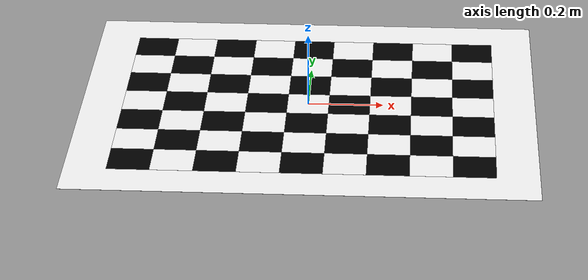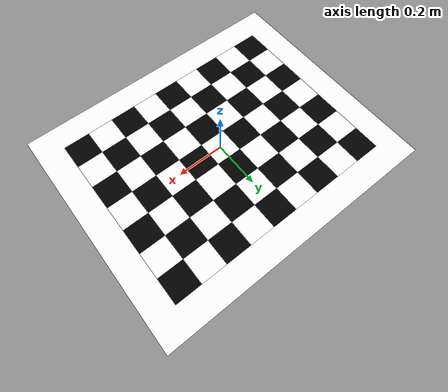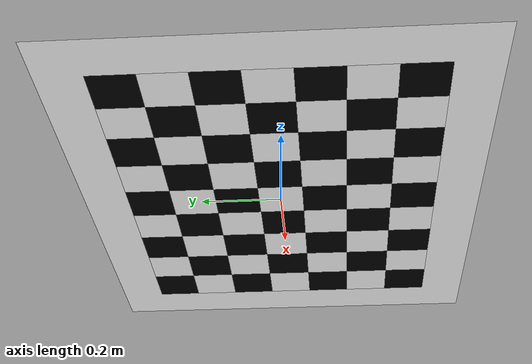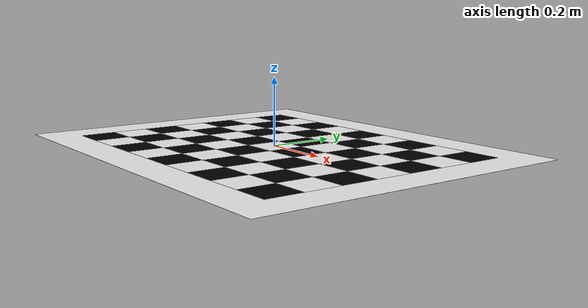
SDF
<?xml version="1.0"?>
<sdf version="1.4">
  <model name="checkerboard_9_7_0_11">
  <static>true</static>
  <link name="checkerboard_9_7_0_11_body">
      <visual name="checker_0_0">
        <pose>-0.44 -0.33 0 0 0 0</pose>
        <geometry>
          <box>
            <size>0.11 0.11 0.0002</size>
          </box>
        </geometry>
        <material>
          <ambient>0 0 0 1</ambient>
          <diffuse>0 0 0 1</diffuse>
          <specular>0 0 0 1</specular>
          <emissive>0 0 0 1</emissive>
        </material>
      </visual>
      <visual name="checker_0_1">
        <pose>-0.44 -0.22 0 0 0 0</pose>
        <geometry>
          <box>
            <size>0.11 0.11 0.0002</size>
          </box>
        </geometry>
        <material>
          <ambient>1 1 1 1</ambient>
          <diffuse>1 1 1 1</diffuse>
          <specular>1 1 1 1</specular>
          <emissive>1 1 1 1</emissive>
        </material>
      </visual>
      <visual name="checker_0_2">
        <pose>-0.44 -0.10999999999999999 0 0 0 0</pose>
        <geometry>
          <box>
            <size>0.11 0.11 0.0002</size>
          </box>
        </geometry>
        <material>
          <ambient>0 0 0 1</ambient>
          <diffuse>0 0 0 1</diffuse>
          <specular>0 0 0 1</specular>
          <emissive>0 0 0 1</emissive>
        </material>
      </visual>
      <visual name="checker_0_3">
        <pose>-0.44 0.0 0 0 0 0</pose>
        <geometry>
          <box>
            <size>0.11 0.11 0.0002</size>
          </box>
        </geometry>
        <material>
          <ambient>1 1 1 1</ambient>
          <diffuse>1 1 1 1</diffuse>
          <specular>1 1 1 1</specular>
          <emissive>1 1 1 1</emissive>
        </material>
      </visual>
      <visual name="checker_0_4">
        <pose>-0.44 0.10999999999999999 0 0 0 0</pose>
        <geometry>
          <box>
            <size>0.11 0.11 0.0002</size>
          </box>
        </geometry>
        <material>
          <ambient>0 0 0 1</ambient>
          <diffuse>0 0 0 1</diffuse>
          <specular>0 0 0 1</specular>
          <emissive>0 0 0 1</emissive>
        </material>
      </visual>
      <visual name="checker_0_5">
        <pose>-0.44 0.22000000000000008 0 0 0 0</pose>
        <geometry>
          <box>
            <size>0.11 0.11 0.0002</size>
          </box>
        </geometry>
        <material>
          <ambient>1 1 1 1</ambient>
          <diffuse>1 1 1 1</diffuse>
          <specular>1 1 1 1</specular>
          <emissive>1 1 1 1</emissive>
        </material>
      </visual>
      <visual name="checker_0_6">
        <pose>-0.44 0.33000000000000007 0 0 0 0</pose>
        <geometry>
          <box>
            <size>0.11 0.11 0.0002</size>
          </box>
        </geometry>
        <material>
          <ambient>0 0 0 1</ambient>
          <diffuse>0 0 0 1</diffuse>
          <specular>0 0 0 1</specular>
          <emissive>0 0 0 1</emissive>
        </material>
      </visual>
      <visual name="checker_1_0">
        <pose>-0.32999999999999996 -0.33 0 0 0 0</pose>
        <geometry>
          <box>
            <size>0.11 0.11 0.0002</size>
          </box>
        </geometry>
        <material>
          <ambient>1 1 1 1</ambient>
          <diffuse>1 1 1 1</diffuse>
          <specular>1 1 1 1</specular>
          <emissive>1 1 1 1</emissive>
        </material>
      </visual>
      <visual name="checker_1_1">
        <pose>-0.32999999999999996 -0.22 0 0 0 0</pose>
        <geometry>
          <box>
            <size>0.11 0.11 0.0002</size>
          </box>
        </geometry>
        <material>
          <ambient>0 0 0 1</ambient>
          <diffuse>0 0 0 1</diffuse>
          <specular>0 0 0 1</specular>
          <emissive>0 0 0 1</emissive>
        </material>
      </visual>
      <visual name="checker_1_2">
        <pose>-0.32999999999999996 -0.10999999999999999 0 0 0 0</pose>
        <geometry>
          <box>
            <size>0.11 0.11 0.0002</size>
          </box>
        </geometry>
        <material>
          <ambient>1 1 1 1</ambient>
          <diffuse>1 1 1 1</diffuse>
          <specular>1 1 1 1</specular>
          <emissive>1 1 1 1</emissive>
        </material>
      </visual>
      <visual name="checker_1_3">
        <pose>-0.32999999999999996 0.0 0 0 0 0</pose>
        <geometry>
          <box>
            <size>0.11 0.11 0.0002</size>
          </box>
        </geometry>
        <material>
          <ambient>0 0 0 1</ambient>
          <diffuse>0 0 0 1</diffuse>
          <specular>0 0 0 1</specular>
          <emissive>0 0 0 1</emissive>
        </material>
      </visual>
      <visual name="checker_1_4">
        <pose>-0.32999999999999996 0.10999999999999999 0 0 0 0</pose>
        <geometry>
          <box>
            <size>0.11 0.11 0.0002</size>
          </box>
        </geometry>
        <material>
          <ambient>1 1 1 1</ambient>
          <diffuse>1 1 1 1</diffuse>
          <specular>1 1 1 1</specular>
          <emissive>1 1 1 1</emissive>
        </material>
      </visual>
      <visual name="checker_1_5">
        <pose>-0.32999999999999996 0.22000000000000008 0 0 0 0</pose>
        <geometry>
          <box>
            <size>0.11 0.11 0.0002</size>
          </box>
        </geometry>
        <material>
          <ambient>0 0 0 1</ambient>
          <diffuse>0 0 0 1</diffuse>
          <specular>0 0 0 1</specular>
          <emissive>0 0 0 1</emissive>
        </material>
      </visual>
      <visual name="checker_1_6">
        <pose>-0.32999999999999996 0.33000000000000007 0 0 0 0</pose>
        <geometry>
          <box>
            <size>0.11 0.11 0.0002</size>
          </box>
        </geometry>
        <material>
          <ambient>1 1 1 1</ambient>
          <diffuse>1 1 1 1</diffuse>
          <specular>1 1 1 1</specular>
          <emissive>1 1 1 1</emissive>
        </material>
      </visual>
      <visual name="checker_2_0">
        <pose>-0.21999999999999997 -0.33 0 0 0 0</pose>
        <geometry>
          <box>
            <size>0.11 0.11 0.0002</size>
          </box>
        </geometry>
        <material>
          <ambient>0 0 0 1</ambient>
          <diffuse>0 0 0 1</diffuse>
          <specular>0 0 0 1</specular>
          <emissive>0 0 0 1</emissive>
        </material>
      </visual>
      <visual name="checker_2_1">
        <pose>-0.21999999999999997 -0.22 0 0 0 0</pose>
        <geometry>
          <box>
            <size>0.11 0.11 0.0002</size>
          </box>
        </geometry>
        <material>
          <ambient>1 1 1 1</ambient>
          <diffuse>1 1 1 1</diffuse>
          <specular>1 1 1 1</specular>
          <emissive>1 1 1 1</emissive>
        </material>
      </visual>
      <visual name="checker_2_2">
        <pose>-0.21999999999999997 -0.10999999999999999 0 0 0 0</pose>
        <geometry>
          <box>
            <size>0.11 0.11 0.0002</size>
          </box>
        </geometry>
        <material>
          <ambient>0 0 0 1</ambient>
          <diffuse>0 0 0 1</diffuse>
          <specular>0 0 0 1</specular>
          <emissive>0 0 0 1</emissive>
        </material>
      </visual>
      <visual name="checker_2_3">
        <pose>-0.21999999999999997 0.0 0 0 0 0</pose>
        <geometry>
          <box>
            <size>0.11 0.11 0.0002</size>
          </box>
        </geometry>
        <material>
          <ambient>1 1 1 1</ambient>
          <diffuse>1 1 1 1</diffuse>
          <specular>1 1 1 1</specular>
          <emissive>1 1 1 1</emissive>
        </material>
      </visual>
      <visual name="checker_2_4">
        <pose>-0.21999999999999997 0.10999999999999999 0 0 0 0</pose>
        <geometry>
          <box>
            <size>0.11 0.11 0.0002</size>
          </box>
        </geometry>
        <material>
          <ambient>0 0 0 1</ambient>
          <diffuse>0 0 0 1</diffuse>
          <specular>0 0 0 1</specular>
          <emissive>0 0 0 1</emissive>
        </material>
      </visual>
      <visual name="checker_2_5">
        <pose>-0.21999999999999997 0.22000000000000008 0 0 0 0</pose>
        <geometry>
          <box>
            <size>0.11 0.11 0.0002</size>
          </box>
        </geometry>
        <material>
          <ambient>1 1 1 1</ambient>
          <diffuse>1 1 1 1</diffuse>
          <specular>1 1 1 1</specular>
          <emissive>1 1 1 1</emissive>
        </material>
      </visual>
      <visual name="checker_2_6">
        <pose>-0.21999999999999997 0.33000000000000007 0 0 0 0</pose>
        <geometry>
          <box>
            <size>0.11 0.11 0.0002</size>
          </box>
        </geometry>
        <material>
          <ambient>0 0 0 1</ambient>
          <diffuse>0 0 0 1</diffuse>
          <specular>0 0 0 1</specular>
          <emissive>0 0 0 1</emissive>
        </material>
      </visual>
      <visual name="checker_3_0">
        <pose>-0.10999999999999999 -0.33 0 0 0 0</pose>
        <geometry>
          <box>
            <size>0.11 0.11 0.0002</size>
          </box>
        </geometry>
        <material>
          <ambient>1 1 1 1</ambient>
          <diffuse>1 1 1 1</diffuse>
          <specular>1 1 1 1</specular>
          <emissive>1 1 1 1</emissive>
        </material>
      </visual>
      <visual name="checker_3_1">
        <pose>-0.10999999999999999 -0.22 0 0 0 0</pose>
        <geometry>
          <box>
            <size>0.11 0.11 0.0002</size>
          </box>
        </geometry>
        <material>
          <ambient>0 0 0 1</ambient>
          <diffuse>0 0 0 1</diffuse>
          <specular>0 0 0 1</specular>
          <emissive>0 0 0 1</emissive>
        </material>
      </visual>
      <visual name="checker_3_2">
        <pose>-0.10999999999999999 -0.10999999999999999 0 0 0 0</pose>
        <geometry>
          <box>
            <size>0.11 0.11 0.0002</size>
          </box>
        </geometry>
        <material>
          <ambient>1 1 1 1</ambient>
          <diffuse>1 1 1 1</diffuse>
          <specular>1 1 1 1</specular>
          <emissive>1 1 1 1</emissive>
        </material>
      </visual>
      <visual name="checker_3_3">
        <pose>-0.10999999999999999 0.0 0 0 0 0</pose>
        <geometry>
          <box>
            <size>0.11 0.11 0.0002</size>
          </box>
        </geometry>
        <material>
          <ambient>0 0 0 1</ambient>
          <diffuse>0 0 0 1</diffuse>
          <specular>0 0 0 1</specular>
          <emissive>0 0 0 1</emissive>
        </material>
      </visual>
      <visual name="checker_3_4">
        <pose>-0.10999999999999999 0.10999999999999999 0 0 0 0</pose>
        <geometry>
          <box>
            <size>0.11 0.11 0.0002</size>
          </box>
        </geometry>
        <material>
          <ambient>1 1 1 1</ambient>
          <diffuse>1 1 1 1</diffuse>
          <specular>1 1 1 1</specular>
          <emissive>1 1 1 1</emissive>
        </material>
      </visual>
      <visual name="checker_3_5">
        <pose>-0.10999999999999999 0.22000000000000008 0 0 0 0</pose>
        <geometry>
          <box>
            <size>0.11 0.11 0.0002</size>
          </box>
        </geometry>
        <material>
          <ambient>0 0 0 1</ambient>
          <diffuse>0 0 0 1</diffuse>
          <specular>0 0 0 1</specular>
          <emissive>0 0 0 1</emissive>
        </material>
      </visual>
      <visual name="checker_3_6">
        <pose>-0.10999999999999999 0.33000000000000007 0 0 0 0</pose>
        <geometry>
          <box>
            <size>0.11 0.11 0.0002</size>
          </box>
        </geometry>
        <material>
          <ambient>1 1 1 1</ambient>
          <diffuse>1 1 1 1</diffuse>
          <specular>1 1 1 1</specular>
          <emissive>1 1 1 1</emissive>
        </material>
      </visual>
      <visual name="checker_4_0">
        <pose>0.0 -0.33 0 0 0 0</pose>
        <geometry>
          <box>
            <size>0.11 0.11 0.0002</size>
          </box>
        </geometry>
        <material>
          <ambient>0 0 0 1</ambient>
          <diffuse>0 0 0 1</diffuse>
          <specular>0 0 0 1</specular>
          <emissive>0 0 0 1</emissive>
        </material>
      </visual>
      <visual name="checker_4_1">
        <pose>0.0 -0.22 0 0 0 0</pose>
        <geometry>
          <box>
            <size>0.11 0.11 0.0002</size>
          </box>
        </geometry>
        <material>
          <ambient>1 1 1 1</ambient>
          <diffuse>1 1 1 1</diffuse>
          <specular>1 1 1 1</specular>
          <emissive>1 1 1 1</emissive>
        </material>
      </visual>
      <visual name="checker_4_2">
        <pose>0.0 -0.10999999999999999 0 0 0 0</pose>
        <geometry>
          <box>
            <size>0.11 0.11 0.0002</size>
          </box>
        </geometry>
        <material>
          <ambient>0 0 0 1</ambient>
          <diffuse>0 0 0 1</diffuse>
          <specular>0 0 0 1</specular>
          <emissive>0 0 0 1</emissive>
        </material>
      </visual>
      <visual name="checker_4_3">
        <pose>0.0 0.0 0 0 0 0</pose>
        <geometry>
          <box>
            <size>0.11 0.11 0.0002</size>
          </box>
        </geometry>
        <material>
          <ambient>1 1 1 1</ambient>
          <diffuse>1 1 1 1</diffuse>
          <specular>1 1 1 1</specular>
          <emissive>1 1 1 1</emissive>
        </material>
      </visual>
      <visual name="checker_4_4">
        <pose>0.0 0.10999999999999999 0 0 0 0</pose>
        <geometry>
          <box>
            <size>0.11 0.11 0.0002</size>
          </box>
        </geometry>
        <material>
          <ambient>0 0 0 1</ambient>
          <diffuse>0 0 0 1</diffuse>
          <specular>0 0 0 1</specular>
          <emissive>0 0 0 1</emissive>
        </material>
      </visual>
      <visual name="checker_4_5">
        <pose>0.0 0.22000000000000008 0 0 0 0</pose>
        <geometry>
          <box>
            <size>0.11 0.11 0.0002</size>
          </box>
        </geometry>
        <material>
          <ambient>1 1 1 1</ambient>
          <diffuse>1 1 1 1</diffuse>
          <specular>1 1 1 1</specular>
          <emissive>1 1 1 1</emissive>
        </material>
      </visual>
      <visual name="checker_4_6">
        <pose>0.0 0.33000000000000007 0 0 0 0</pose>
        <geometry>
          <box>
            <size>0.11 0.11 0.0002</size>
          </box>
        </geometry>
        <material>
          <ambient>0 0 0 1</ambient>
          <diffuse>0 0 0 1</diffuse>
          <specular>0 0 0 1</specular>
          <emissive>0 0 0 1</emissive>
        </material>
      </visual>
      <visual name="checker_5_0">
        <pose>0.1100000000000001 -0.33 0 0 0 0</pose>
        <geometry>
          <box>
            <size>0.11 0.11 0.0002</size>
          </box>
        </geometry>
        <material>
          <ambient>1 1 1 1</ambient>
          <diffuse>1 1 1 1</diffuse>
          <specular>1 1 1 1</specular>
          <emissive>1 1 1 1</emissive>
        </material>
      </visual>
      <visual name="checker_5_1">
        <pose>0.1100000000000001 -0.22 0 0 0 0</pose>
        <geometry>
          <box>
            <size>0.11 0.11 0.0002</size>
          </box>
        </geometry>
        <material>
          <ambient>0 0 0 1</ambient>
          <diffuse>0 0 0 1</diffuse>
          <specular>0 0 0 1</specular>
          <emissive>0 0 0 1</emissive>
        </material>
      </visual>
      <visual name="checker_5_2">
        <pose>0.1100000000000001 -0.10999999999999999 0 0 0 0</pose>
        <geometry>
          <box>
            <size>0.11 0.11 0.0002</size>
          </box>
        </geometry>
        <material>
          <ambient>1 1 1 1</ambient>
          <diffuse>1 1 1 1</diffuse>
          <specular>1 1 1 1</specular>
          <emissive>1 1 1 1</emissive>
        </material>
      </visual>
      <visual name="checker_5_3">
        <pose>0.1100000000000001 0.0 0 0 0 0</pose>
        <geometry>
          <box>
            <size>0.11 0.11 0.0002</size>
          </box>
        </geometry>
        <material>
          <ambient>0 0 0 1</ambient>
          <diffuse>0 0 0 1</diffuse>
          <specular>0 0 0 1</specular>
          <emissive>0 0 0 1</emissive>
        </material>
      </visual>
      <visual name="checker_5_4">
        <pose>0.1100000000000001 0.10999999999999999 0 0 0 0</pose>
        <geometry>
          <box>
            <size>0.11 0.11 0.0002</size>
          </box>
        </geometry>
        <material>
          <ambient>1 1 1 1</ambient>
          <diffuse>1 1 1 1</diffuse>
          <specular>1 1 1 1</specular>
          <emissive>1 1 1 1</emissive>
        </material>
      </visual>
      <visual name="checker_5_5">
        <pose>0.1100000000000001 0.22000000000000008 0 0 0 0</pose>
        <geometry>
          <box>
            <size>0.11 0.11 0.0002</size>
          </box>
        </geometry>
        <material>
          <ambient>0 0 0 1</ambient>
          <diffuse>0 0 0 1</diffuse>
          <specular>0 0 0 1</specular>
          <emissive>0 0 0 1</emissive>
        </material>
      </visual>
      <visual name="checker_5_6">
        <pose>0.1100000000000001 0.33000000000000007 0 0 0 0</pose>
        <geometry>
          <box>
            <size>0.11 0.11 0.0002</size>
          </box>
        </geometry>
        <material>
          <ambient>1 1 1 1</ambient>
          <diffuse>1 1 1 1</diffuse>
          <specular>1 1 1 1</specular>
          <emissive>1 1 1 1</emissive>
        </material>
      </visual>
      <visual name="checker_6_0">
        <pose>0.22000000000000008 -0.33 0 0 0 0</pose>
        <geometry>
          <box>
            <size>0.11 0.11 0.0002</size>
          </box>
        </geometry>
        <material>
          <ambient>0 0 0 1</ambient>
          <diffuse>0 0 0 1</diffuse>
          <specular>0 0 0 1</specular>
          <emissive>0 0 0 1</emissive>
        </material>
      </visual>
      <visual name="checker_6_1">
        <pose>0.22000000000000008 -0.22 0 0 0 0</pose>
        <geometry>
          <box>
            <size>0.11 0.11 0.0002</size>
          </box>
        </geometry>
        <material>
          <ambient>1 1 1 1</ambient>
          <diffuse>1 1 1 1</diffuse>
          <specular>1 1 1 1</specular>
          <emissive>1 1 1 1</emissive>
        </material>
      </visual>
      <visual name="checker_6_2">
        <pose>0.22000000000000008 -0.10999999999999999 0 0 0 0</pose>
        <geometry>
          <box>
            <size>0.11 0.11 0.0002</size>
          </box>
        </geometry>
        <material>
          <ambient>0 0 0 1</ambient>
          <diffuse>0 0 0 1</diffuse>
          <specular>0 0 0 1</specular>
          <emissive>0 0 0 1</emissive>
        </material>
      </visual>
      <visual name="checker_6_3">
        <pose>0.22000000000000008 0.0 0 0 0 0</pose>
        <geometry>
          <box>
            <size>0.11 0.11 0.0002</size>
          </box>
        </geometry>
        <material>
          <ambient>1 1 1 1</ambient>
          <diffuse>1 1 1 1</diffuse>
          <specular>1 1 1 1</specular>
          <emissive>1 1 1 1</emissive>
        </material>
      </visual>
      <visual name="checker_6_4">
        <pose>0.22000000000000008 0.10999999999999999 0 0 0 0</pose>
        <geometry>
          <box>
            <size>0.11 0.11 0.0002</size>
          </box>
        </geometry>
        <material>
          <ambient>0 0 0 1</ambient>
          <diffuse>0 0 0 1</diffuse>
          <specular>0 0 0 1</specular>
          <emissive>0 0 0 1</emissive>
        </material>
      </visual>
      <visual name="checker_6_5">
        <pose>0.22000000000000008 0.22000000000000008 0 0 0 0</pose>
        <geometry>
          <box>
            <size>0.11 0.11 0.0002</size>
          </box>
        </geometry>
        <material>
          <ambient>1 1 1 1</ambient>
          <diffuse>1 1 1 1</diffuse>
          <specular>1 1 1 1</specular>
          <emissive>1 1 1 1</emissive>
        </material>
      </visual>
      <visual name="checker_6_6">
        <pose>0.22000000000000008 0.33000000000000007 0 0 0 0</pose>
        <geometry>
          <box>
            <size>0.11 0.11 0.0002</size>
          </box>
        </geometry>
        <material>
          <ambient>0 0 0 1</ambient>
          <diffuse>0 0 0 1</diffuse>
          <specular>0 0 0 1</specular>
          <emissive>0 0 0 1</emissive>
        </material>
      </visual>
      <visual name="checker_7_0">
        <pose>0.33000000000000007 -0.33 0 0 0 0</pose>
        <geometry>
          <box>
            <size>0.11 0.11 0.0002</size>
          </box>
        </geometry>
        <material>
          <ambient>1 1 1 1</ambient>
          <diffuse>1 1 1 1</diffuse>
          <specular>1 1 1 1</specular>
          <emissive>1 1 1 1</emissive>
        </material>
      </visual>
      <visual name="checker_7_1">
        <pose>0.33000000000000007 -0.22 0 0 0 0</pose>
        <geometry>
          <box>
            <size>0.11 0.11 0.0002</size>
          </box>
        </geometry>
        <material>
          <ambient>0 0 0 1</ambient>
          <diffuse>0 0 0 1</diffuse>
          <specular>0 0 0 1</specular>
          <emissive>0 0 0 1</emissive>
        </material>
      </visual>
      <visual name="checker_7_2">
        <pose>0.33000000000000007 -0.10999999999999999 0 0 0 0</pose>
        <geometry>
          <box>
            <size>0.11 0.11 0.0002</size>
          </box>
        </geometry>
        <material>
          <ambient>1 1 1 1</ambient>
          <diffuse>1 1 1 1</diffuse>
          <specular>1 1 1 1</specular>
          <emissive>1 1 1 1</emissive>
        </material>
      </visual>
      <visual name="checker_7_3">
        <pose>0.33000000000000007 0.0 0 0 0 0</pose>
        <geometry>
          <box>
            <size>0.11 0.11 0.0002</size>
          </box>
        </geometry>
        <material>
          <ambient>0 0 0 1</ambient>
          <diffuse>0 0 0 1</diffuse>
          <specular>0 0 0 1</specular>
          <emissive>0 0 0 1</emissive>
        </material>
      </visual>
      <visual name="checker_7_4">
        <pose>0.33000000000000007 0.10999999999999999 0 0 0 0</pose>
        <geometry>
          <box>
            <size>0.11 0.11 0.0002</size>
          </box>
        </geometry>
        <material>
          <ambient>1 1 1 1</ambient>
          <diffuse>1 1 1 1</diffuse>
          <specular>1 1 1 1</specular>
          <emissive>1 1 1 1</emissive>
        </material>
      </visual>
      <visual name="checker_7_5">
        <pose>0.33000000000000007 0.22000000000000008 0 0 0 0</pose>
        <geometry>
          <box>
            <size>0.11 0.11 0.0002</size>
          </box>
        </geometry>
        <material>
          <ambient>0 0 0 1</ambient>
          <diffuse>0 0 0 1</diffuse>
          <specular>0 0 0 1</specular>
          <emissive>0 0 0 1</emissive>
        </material>
      </visual>
      <visual name="checker_7_6">
        <pose>0.33000000000000007 0.33000000000000007 0 0 0 0</pose>
        <geometry>
          <box>
            <size>0.11 0.11 0.0002</size>
          </box>
        </geometry>
        <material>
          <ambient>1 1 1 1</ambient>
          <diffuse>1 1 1 1</diffuse>
          <specular>1 1 1 1</specular>
          <emissive>1 1 1 1</emissive>
        </material>
      </visual>
      <visual name="checker_8_0">
        <pose>0.44000000000000006 -0.33 0 0 0 0</pose>
        <geometry>
          <box>
            <size>0.11 0.11 0.0002</size>
          </box>
        </geometry>
        <material>
          <ambient>0 0 0 1</ambient>
          <diffuse>0 0 0 1</diffuse>
          <specular>0 0 0 1</specular>
          <emissive>0 0 0 1</emissive>
        </material>
      </visual>
      <visual name="checker_8_1">
        <pose>0.44000000000000006 -0.22 0 0 0 0</pose>
        <geometry>
          <box>
            <size>0.11 0.11 0.0002</size>
          </box>
        </geometry>
        <material>
          <ambient>1 1 1 1</ambient>
          <diffuse>1 1 1 1</diffuse>
          <specular>1 1 1 1</specular>
          <emissive>1 1 1 1</emissive>
        </material>
      </visual>
      <visual name="checker_8_2">
        <pose>0.44000000000000006 -0.10999999999999999 0 0 0 0</pose>
        <geometry>
          <box>
            <size>0.11 0.11 0.0002</size>
          </box>
        </geometry>
        <material>
          <ambient>0 0 0 1</ambient>
          <diffuse>0 0 0 1</diffuse>
          <specular>0 0 0 1</specular>
          <emissive>0 0 0 1</emissive>
        </material>
      </visual>
      <visual name="checker_8_3">
        <pose>0.44000000000000006 0.0 0 0 0 0</pose>
        <geometry>
          <box>
            <size>0.11 0.11 0.0002</size>
          </box>
        </geometry>
        <material>
          <ambient>1 1 1 1</ambient>
          <diffuse>1 1 1 1</diffuse>
          <specular>1 1 1 1</specular>
          <emissive>1 1 1 1</emissive>
        </material>
      </visual>
      <visual name="checker_8_4">
        <pose>0.44000000000000006 0.10999999999999999 0 0 0 0</pose>
        <geometry>
          <box>
            <size>0.11 0.11 0.0002</size>
          </box>
        </geometry>
        <material>
          <ambient>0 0 0 1</ambient>
          <diffuse>0 0 0 1</diffuse>
          <specular>0 0 0 1</specular>
          <emissive>0 0 0 1</emissive>
        </material>
      </visual>
      <visual name="checker_8_5">
        <pose>0.44000000000000006 0.22000000000000008 0 0 0 0</pose>
        <geometry>
          <box>
            <size>0.11 0.11 0.0002</size>
          </box>
        </geometry>
        <material>
          <ambient>1 1 1 1</ambient>
          <diffuse>1 1 1 1</diffuse>
          <specular>1 1 1 1</specular>
          <emissive>1 1 1 1</emissive>
        </material>
      </visual>
      <visual name="checker_8_6">
        <pose>0.44000000000000006 0.33000000000000007 0 0 0 0</pose>
        <geometry>
          <box>
            <size>0.11 0.11 0.0002</size>
          </box>
        </geometry>
        <material>
          <ambient>0 0 0 1</ambient>
          <diffuse>0 0 0 1</diffuse>
          <specular>0 0 0 1</specular>
          <emissive>0 0 0 1</emissive>
        </material>
      </visual>
      <visual name="checker_backdrop">
        <pose>0 0 0 0 0 0</pose>
        <geometry>
          <box>
            <size>1.21 0.99 0.0001</size>
          </box>
        </geometry>
        <material>
          <ambient>1 1 1 1</ambient>
          <diffuse>1 1 1 1</diffuse>
          <specular>1 1 1 1</specular>
          <emissive>1 1 1 1</emissive>
        </material>
      </visual>
    </link>
  </model>
</sdf>
